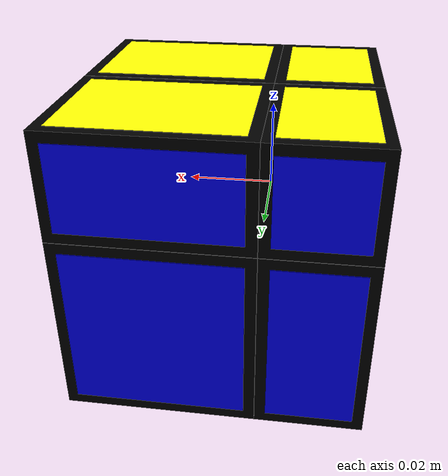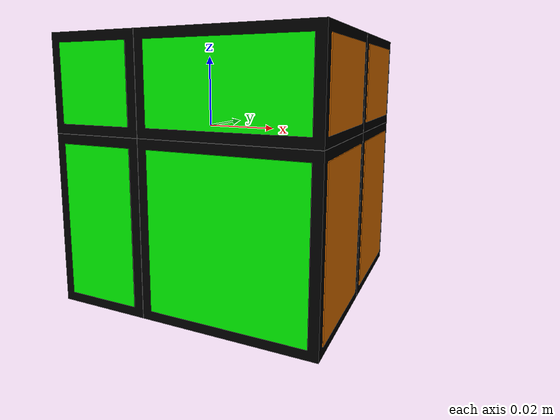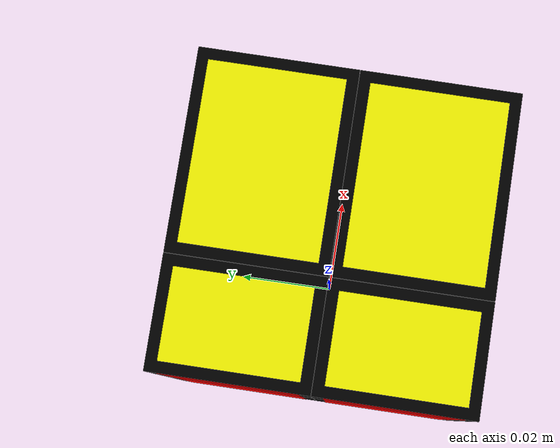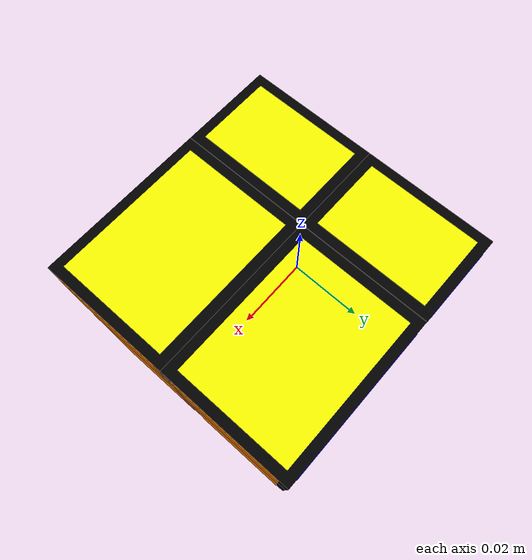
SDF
<?xml version="1.0" ?>
<sdf version="1.7">
	<model name="mirror_cube_2x2">
		<link name="center"/>
		<link name="cubie_0_0_0">
			<pose>-0.01255 -0.017550000000000003 -0.022550000000000004 0.0 0.0 0.0</pose>
			<inertial>
				<mass>0.015356250000000004</mass>
				<inertia>
					<ixx>4.158984375000001e-06</ixx>
					<ixy>0.0</ixy>
					<ixz>0.0</ixz>
					<iyy>3.3911718750000012e-06</iyy>
					<iyz>0.0</iyz>
					<izz>2.3674218750000007e-06</izz>
				</inertia>
			</inertial>
			<collision name="collision">
				<geometry>
					<box>
						<size>0.025 0.035 0.045000000000000005</size>
					</box>
				</geometry>
				<surface>
					<friction>
						<ode>
							<mu>0.6</mu>
							<mu2>0.6</mu2>
						</ode>
					</friction>
				</surface>
			</collision>
			<visual name="black">
				<geometry>
					<box>
						<size>0.025 0.035 0.045000000000000005</size>
					</box>
				</geometry>
				<material>
					<diffuse>0 0 0 1</diffuse>
				</material>
			</visual>
			<visual name="red">
				<pose>-0.0125 0.0 0.0 0.0 0.0 0.0</pose>
				<geometry>
					<box>
						<size>0.0002 0.03 0.04</size>
					</box>
				</geometry>
				<material>
					<diffuse>1 0 0 1</diffuse>
				</material>
			</visual>
			<visual name="green">
				<pose>0.0 -0.0175 0.0 0.0 0.0 0.0</pose>
				<geometry>
					<box>
						<size>0.02 0.0003 0.04</size>
					</box>
				</geometry>
				<material>
					<diffuse>0 1 0 1</diffuse>
				</material>
			</visual>
			<visual name="white">
				<pose>0.0 0.0 -0.022500000000000003 0.0 0.0 0.0</pose>
				<geometry>
					<box>
						<size>0.02 0.03 0.0004</size>
					</box>
				</geometry>
				<material>
					<diffuse>1 1 1 1</diffuse>
				</material>
			</visual>
		</link>
		<joint name="ball_0_0_0" type="ball">
			<pose>0.01255 0.017550000000000003 0.022550000000000004 -0.0 -0.0 -0.0</pose>
			<parent>center</parent>
			<child>cubie_0_0_0</child>
			<axis>
				<dynamics>
					<damping>0.1</damping>
				</dynamics>
				<limit>
					<effort>0</effort>
				</limit>
			</axis>
		</joint>
		<link name="cubie_0_0_1">
			<pose>-0.01255 -0.017550000000000003 0.01255 0.0 0.0 0.0</pose>
			<inertial>
				<mass>0.00853125</mass>
				<inertia>
					<ixx>1.3152343750000004e-06</ixx>
					<ixy>0.0</ixy>
					<ixz>0.0</ixz>
					<iyy>8.886718750000003e-07</iyy>
					<iyz>0.0</iyz>
					<izz>1.3152343750000004e-06</izz>
				</inertia>
			</inertial>
			<collision name="collision">
				<geometry>
					<box>
						<size>0.025 0.035 0.025</size>
					</box>
				</geometry>
				<surface>
					<friction>
						<ode>
							<mu>0.6</mu>
							<mu2>0.6</mu2>
						</ode>
					</friction>
				</surface>
			</collision>
			<visual name="black">
				<geometry>
					<box>
						<size>0.025 0.035 0.025</size>
					</box>
				</geometry>
				<material>
					<diffuse>0 0 0 1</diffuse>
				</material>
			</visual>
			<visual name="red">
				<pose>-0.0125 0.0 0.0 0.0 0.0 0.0</pose>
				<geometry>
					<box>
						<size>0.0002 0.03 0.02</size>
					</box>
				</geometry>
				<material>
					<diffuse>1 0 0 1</diffuse>
				</material>
			</visual>
			<visual name="green">
				<pose>0.0 -0.0175 0.0 0.0 0.0 0.0</pose>
				<geometry>
					<box>
						<size>0.02 0.0003 0.02</size>
					</box>
				</geometry>
				<material>
					<diffuse>0 1 0 1</diffuse>
				</material>
			</visual>
			<visual name="yellow">
				<pose>0.0 0.0 0.0125 0.0 0.0 0.0</pose>
				<geometry>
					<box>
						<size>0.02 0.03 0.0002</size>
					</box>
				</geometry>
				<material>
					<diffuse>1 1 0 1</diffuse>
				</material>
			</visual>
		</link>
		<joint name="ball_0_0_1" type="ball">
			<pose>0.01255 0.017550000000000003 -0.01255 -0.0 -0.0 -0.0</pose>
			<parent>center</parent>
			<child>cubie_0_0_1</child>
			<axis>
				<dynamics>
					<damping>0.1</damping>
				</dynamics>
				<limit>
					<effort>0</effort>
				</limit>
			</axis>
		</joint>
		<link name="cubie_0_1_0">
			<pose>-0.01255 0.017550000000000003 -0.022550000000000004 0.0 0.0 0.0</pose>
			<inertial>
				<mass>0.015356250000000004</mass>
				<inertia>
					<ixx>4.158984375000001e-06</ixx>
					<ixy>0.0</ixy>
					<ixz>0.0</ixz>
					<iyy>3.3911718750000012e-06</iyy>
					<iyz>0.0</iyz>
					<izz>2.3674218750000007e-06</izz>
				</inertia>
			</inertial>
			<collision name="collision">
				<geometry>
					<box>
						<size>0.025 0.035 0.045000000000000005</size>
					</box>
				</geometry>
				<surface>
					<friction>
						<ode>
							<mu>0.6</mu>
							<mu2>0.6</mu2>
						</ode>
					</friction>
				</surface>
			</collision>
			<visual name="black">
				<geometry>
					<box>
						<size>0.025 0.035 0.045000000000000005</size>
					</box>
				</geometry>
				<material>
					<diffuse>0 0 0 1</diffuse>
				</material>
			</visual>
			<visual name="red">
				<pose>-0.0125 0.0 0.0 0.0 0.0 0.0</pose>
				<geometry>
					<box>
						<size>0.0002 0.03 0.04</size>
					</box>
				</geometry>
				<material>
					<diffuse>1 0 0 1</diffuse>
				</material>
			</visual>
			<visual name="blue">
				<pose>0.0 0.0175 0.0 0.0 0.0 0.0</pose>
				<geometry>
					<box>
						<size>0.02 0.0003 0.04</size>
					</box>
				</geometry>
				<material>
					<diffuse>0 0 1 1</diffuse>
				</material>
			</visual>
			<visual name="white">
				<pose>0.0 0.0 -0.022500000000000003 0.0 0.0 0.0</pose>
				<geometry>
					<box>
						<size>0.02 0.03 0.0004</size>
					</box>
				</geometry>
				<material>
					<diffuse>1 1 1 1</diffuse>
				</material>
			</visual>
		</link>
		<joint name="ball_0_1_0" type="ball">
			<pose>0.01255 -0.017550000000000003 0.022550000000000004 -0.0 -0.0 -0.0</pose>
			<parent>center</parent>
			<child>cubie_0_1_0</child>
			<axis>
				<dynamics>
					<damping>0.1</damping>
				</dynamics>
				<limit>
					<effort>0</effort>
				</limit>
			</axis>
		</joint>
		<link name="cubie_0_1_1">
			<pose>-0.01255 0.017550000000000003 0.01255 0.0 0.0 0.0</pose>
			<inertial>
				<mass>0.00853125</mass>
				<inertia>
					<ixx>1.3152343750000004e-06</ixx>
					<ixy>0.0</ixy>
					<ixz>0.0</ixz>
					<iyy>8.886718750000003e-07</iyy>
					<iyz>0.0</iyz>
					<izz>1.3152343750000004e-06</izz>
				</inertia>
			</inertial>
			<collision name="collision">
				<geometry>
					<box>
						<size>0.025 0.035 0.025</size>
					</box>
				</geometry>
				<surface>
					<friction>
						<ode>
							<mu>0.6</mu>
							<mu2>0.6</mu2>
						</ode>
					</friction>
				</surface>
			</collision>
			<visual name="black">
				<geometry>
					<box>
						<size>0.025 0.035 0.025</size>
					</box>
				</geometry>
				<material>
					<diffuse>0 0 0 1</diffuse>
				</material>
			</visual>
			<visual name="red">
				<pose>-0.0125 0.0 0.0 0.0 0.0 0.0</pose>
				<geometry>
					<box>
						<size>0.0002 0.03 0.02</size>
					</box>
				</geometry>
				<material>
					<diffuse>1 0 0 1</diffuse>
				</material>
			</visual>
			<visual name="blue">
				<pose>0.0 0.0175 0.0 0.0 0.0 0.0</pose>
				<geometry>
					<box>
						<size>0.02 0.0003 0.02</size>
					</box>
				</geometry>
				<material>
					<diffuse>0 0 1 1</diffuse>
				</material>
			</visual>
			<visual name="yellow">
				<pose>0.0 0.0 0.0125 0.0 0.0 0.0</pose>
				<geometry>
					<box>
						<size>0.02 0.03 0.0002</size>
					</box>
				</geometry>
				<material>
					<diffuse>1 1 0 1</diffuse>
				</material>
			</visual>
		</link>
		<joint name="ball_0_1_1" type="ball">
			<pose>0.01255 -0.017550000000000003 -0.01255 -0.0 -0.0 -0.0</pose>
			<parent>center</parent>
			<child>cubie_0_1_1</child>
			<axis>
				<dynamics>
					<damping>0.1</damping>
				</dynamics>
				<limit>
					<effort>0</effort>
				</limit>
			</axis>
		</joint>
		<link name="cubie_1_0_0">
			<pose>0.022550000000000004 -0.017550000000000003 -0.022550000000000004 0.0 0.0 0.0</pose>
			<inertial>
				<mass>0.027641250000000006</mass>
				<inertia>
					<ixx>7.486171875000002e-06</ixx>
					<ixy>0.0</ixy>
					<ixz>0.0</ixz>
					<iyy>9.328921875000004e-06</iyy>
					<iyz>0.0</iyz>
					<izz>7.486171875000002e-06</izz>
				</inertia>
			</inertial>
			<collision name="collision">
				<geometry>
					<box>
						<size>0.045000000000000005 0.035 0.045000000000000005</size>
					</box>
				</geometry>
				<surface>
					<friction>
						<ode>
							<mu>0.6</mu>
							<mu2>0.6</mu2>
						</ode>
					</friction>
				</surface>
			</collision>
			<visual name="black">
				<geometry>
					<box>
						<size>0.045000000000000005 0.035 0.045000000000000005</size>
					</box>
				</geometry>
				<material>
					<diffuse>0 0 0 1</diffuse>
				</material>
			</visual>
			<visual name="orange">
				<pose>0.022500000000000003 0.0 0.0 0.0 0.0 0.0</pose>
				<geometry>
					<box>
						<size>0.0004 0.03 0.04</size>
					</box>
				</geometry>
				<material>
					<diffuse>1.0 0.5 0.0 1.0</diffuse>
				</material>
			</visual>
			<visual name="green">
				<pose>0.0 -0.0175 0.0 0.0 0.0 0.0</pose>
				<geometry>
					<box>
						<size>0.04 0.0003 0.04</size>
					</box>
				</geometry>
				<material>
					<diffuse>0 1 0 1</diffuse>
				</material>
			</visual>
			<visual name="white">
				<pose>0.0 0.0 -0.022500000000000003 0.0 0.0 0.0</pose>
				<geometry>
					<box>
						<size>0.04 0.03 0.0004</size>
					</box>
				</geometry>
				<material>
					<diffuse>1 1 1 1</diffuse>
				</material>
			</visual>
		</link>
		<joint name="ball_1_0_0" type="ball">
			<pose>-0.022550000000000004 0.017550000000000003 0.022550000000000004 -0.0 -0.0 -0.0</pose>
			<parent>center</parent>
			<child>cubie_1_0_0</child>
			<axis>
				<dynamics>
					<damping>0.1</damping>
				</dynamics>
				<limit>
					<effort>0</effort>
				</limit>
			</axis>
		</joint>
		<link name="cubie_1_0_1">
			<pose>0.022550000000000004 -0.017550000000000003 0.01255 0.0 0.0 0.0</pose>
			<inertial>
				<mass>0.015356250000000004</mass>
				<inertia>
					<ixx>2.3674218750000007e-06</ixx>
					<ixy>0.0</ixy>
					<ixz>0.0</ixz>
					<iyy>3.3911718750000012e-06</iyy>
					<iyz>0.0</iyz>
					<izz>4.158984375000001e-06</izz>
				</inertia>
			</inertial>
			<collision name="collision">
				<geometry>
					<box>
						<size>0.045000000000000005 0.035 0.025</size>
					</box>
				</geometry>
				<surface>
					<friction>
						<ode>
							<mu>0.6</mu>
							<mu2>0.6</mu2>
						</ode>
					</friction>
				</surface>
			</collision>
			<visual name="black">
				<geometry>
					<box>
						<size>0.045000000000000005 0.035 0.025</size>
					</box>
				</geometry>
				<material>
					<diffuse>0 0 0 1</diffuse>
				</material>
			</visual>
			<visual name="orange">
				<pose>0.022500000000000003 0.0 0.0 0.0 0.0 0.0</pose>
				<geometry>
					<box>
						<size>0.0004 0.03 0.02</size>
					</box>
				</geometry>
				<material>
					<diffuse>1.0 0.5 0.0 1.0</diffuse>
				</material>
			</visual>
			<visual name="green">
				<pose>0.0 -0.0175 0.0 0.0 0.0 0.0</pose>
				<geometry>
					<box>
						<size>0.04 0.0003 0.02</size>
					</box>
				</geometry>
				<material>
					<diffuse>0 1 0 1</diffuse>
				</material>
			</visual>
			<visual name="yellow">
				<pose>0.0 0.0 0.0125 0.0 0.0 0.0</pose>
				<geometry>
					<box>
						<size>0.04 0.03 0.0002</size>
					</box>
				</geometry>
				<material>
					<diffuse>1 1 0 1</diffuse>
				</material>
			</visual>
		</link>
		<joint name="ball_1_0_1" type="ball">
			<pose>-0.022550000000000004 0.017550000000000003 -0.01255 -0.0 -0.0 -0.0</pose>
			<parent>center</parent>
			<child>cubie_1_0_1</child>
			<axis>
				<dynamics>
					<damping>0.1</damping>
				</dynamics>
				<limit>
					<effort>0</effort>
				</limit>
			</axis>
		</joint>
		<link name="cubie_1_1_0">
			<pose>0.022550000000000004 0.017550000000000003 -0.022550000000000004 0.0 0.0 0.0</pose>
			<inertial>
				<mass>0.027641250000000006</mass>
				<inertia>
					<ixx>7.486171875000002e-06</ixx>
					<ixy>0.0</ixy>
					<ixz>0.0</ixz>
					<iyy>9.328921875000004e-06</iyy>
					<iyz>0.0</iyz>
					<izz>7.486171875000002e-06</izz>
				</inertia>
			</inertial>
			<collision name="collision">
				<geometry>
					<box>
						<size>0.045000000000000005 0.035 0.045000000000000005</size>
					</box>
				</geometry>
				<surface>
					<friction>
						<ode>
							<mu>0.6</mu>
							<mu2>0.6</mu2>
						</ode>
					</friction>
				</surface>
			</collision>
			<visual name="black">
				<geometry>
					<box>
						<size>0.045000000000000005 0.035 0.045000000000000005</size>
					</box>
				</geometry>
				<material>
					<diffuse>0 0 0 1</diffuse>
				</material>
			</visual>
			<visual name="orange">
				<pose>0.022500000000000003 0.0 0.0 0.0 0.0 0.0</pose>
				<geometry>
					<box>
						<size>0.0004 0.03 0.04</size>
					</box>
				</geometry>
				<material>
					<diffuse>1.0 0.5 0.0 1.0</diffuse>
				</material>
			</visual>
			<visual name="blue">
				<pose>0.0 0.0175 0.0 0.0 0.0 0.0</pose>
				<geometry>
					<box>
						<size>0.04 0.0003 0.04</size>
					</box>
				</geometry>
				<material>
					<diffuse>0 0 1 1</diffuse>
				</material>
			</visual>
			<visual name="white">
				<pose>0.0 0.0 -0.022500000000000003 0.0 0.0 0.0</pose>
				<geometry>
					<box>
						<size>0.04 0.03 0.0004</size>
					</box>
				</geometry>
				<material>
					<diffuse>1 1 1 1</diffuse>
				</material>
			</visual>
		</link>
		<joint name="ball_1_1_0" type="ball">
			<pose>-0.022550000000000004 -0.017550000000000003 0.022550000000000004 -0.0 -0.0 -0.0</pose>
			<parent>center</parent>
			<child>cubie_1_1_0</child>
			<axis>
				<dynamics>
					<damping>0.1</damping>
				</dynamics>
				<limit>
					<effort>0</effort>
				</limit>
			</axis>
		</joint>
		<link name="cubie_1_1_1">
			<pose>0.022550000000000004 0.017550000000000003 0.01255 0.0 0.0 0.0</pose>
			<inertial>
				<mass>0.015356250000000004</mass>
				<inertia>
					<ixx>2.3674218750000007e-06</ixx>
					<ixy>0.0</ixy>
					<ixz>0.0</ixz>
					<iyy>3.3911718750000012e-06</iyy>
					<iyz>0.0</iyz>
					<izz>4.158984375000001e-06</izz>
				</inertia>
			</inertial>
			<collision name="collision">
				<geometry>
					<box>
						<size>0.045000000000000005 0.035 0.025</size>
					</box>
				</geometry>
				<surface>
					<friction>
						<ode>
							<mu>0.6</mu>
							<mu2>0.6</mu2>
						</ode>
					</friction>
				</surface>
			</collision>
			<visual name="black">
				<geometry>
					<box>
						<size>0.045000000000000005 0.035 0.025</size>
					</box>
				</geometry>
				<material>
					<diffuse>0 0 0 1</diffuse>
				</material>
			</visual>
			<visual name="orange">
				<pose>0.022500000000000003 0.0 0.0 0.0 0.0 0.0</pose>
				<geometry>
					<box>
						<size>0.0004 0.03 0.02</size>
					</box>
				</geometry>
				<material>
					<diffuse>1.0 0.5 0.0 1.0</diffuse>
				</material>
			</visual>
			<visual name="blue">
				<pose>0.0 0.0175 0.0 0.0 0.0 0.0</pose>
				<geometry>
					<box>
						<size>0.04 0.0003 0.02</size>
					</box>
				</geometry>
				<material>
					<diffuse>0 0 1 1</diffuse>
				</material>
			</visual>
			<visual name="yellow">
				<pose>0.0 0.0 0.0125 0.0 0.0 0.0</pose>
				<geometry>
					<box>
						<size>0.04 0.03 0.0002</size>
					</box>
				</geometry>
				<material>
					<diffuse>1 1 0 1</diffuse>
				</material>
			</visual>
		</link>
		<joint name="ball_1_1_1" type="ball">
			<pose>-0.022550000000000004 -0.017550000000000003 -0.01255 -0.0 -0.0 -0.0</pose>
			<parent>center</parent>
			<child>cubie_1_1_1</child>
			<axis>
				<dynamics>
					<damping>0.1</damping>
				</dynamics>
				<limit>
					<effort>0</effort>
				</limit>
			</axis>
		</joint>
	</model>
</sdf>
